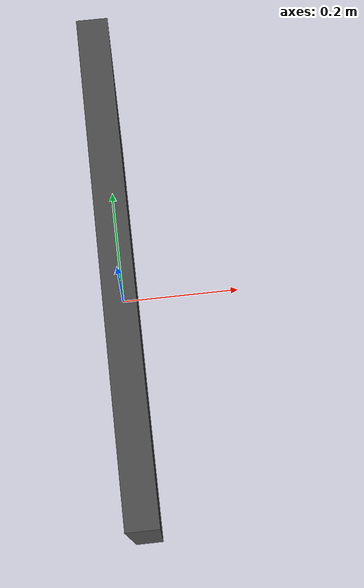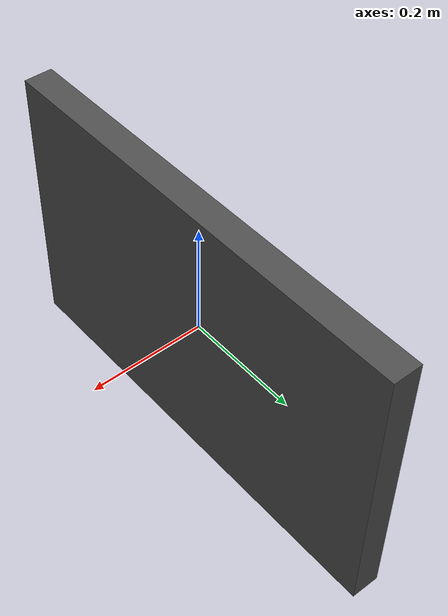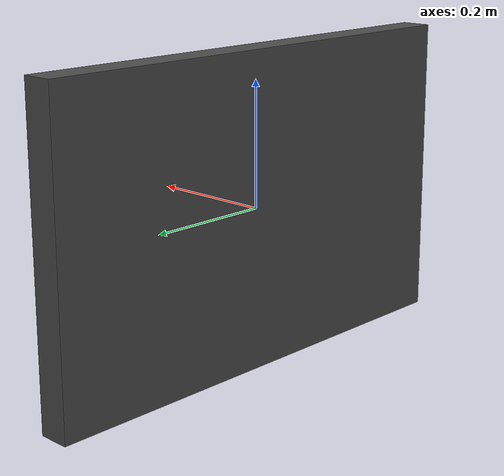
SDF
<?xml version='1.0'?>
<sdf version='1.7'>
  <model name='parede_10'>
    <pose>0 0 0 0 0 1.57</pose>
    <link name='Wall_10'>
      <collision name='Wall_10_Collision'>
        <geometry>
          <box>
            <size>0.8 0.05 0.5</size>
          </box>
        </geometry>
        <pose>0 0 0 0 -0 0</pose>
      </collision>
      <visual name='Wall_10_Visual'>
        <pose>0 0 0 0 -0 0</pose>
        <geometry>
          <box>
            <size>0.8 0.05 0.5</size>
          </box>
        </geometry>
        <material>
          <script>
            <uri>file://media/materials/scripts/gazebo.material</uri>
            <name>Gazebo/DarkGrey</name>
          </script>
          <ambient>1 1 1 1</ambient>
        </material>
        <meta>
          <layer>0</layer>
        </meta>
      </visual>
      <pose>0 0 0 0 0 0</pose>
    </link>
    <static>1</static>
  </model>
</sdf>
